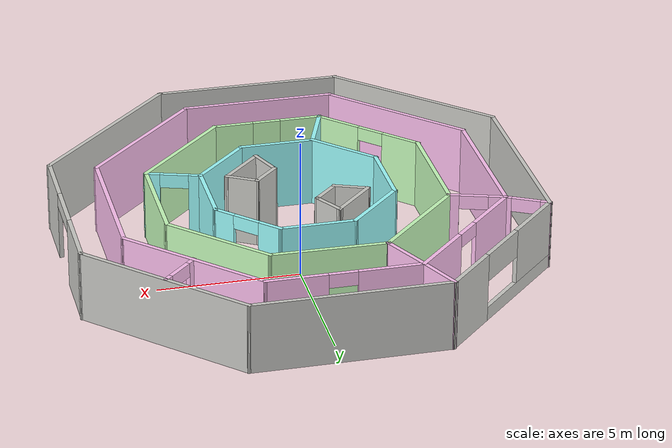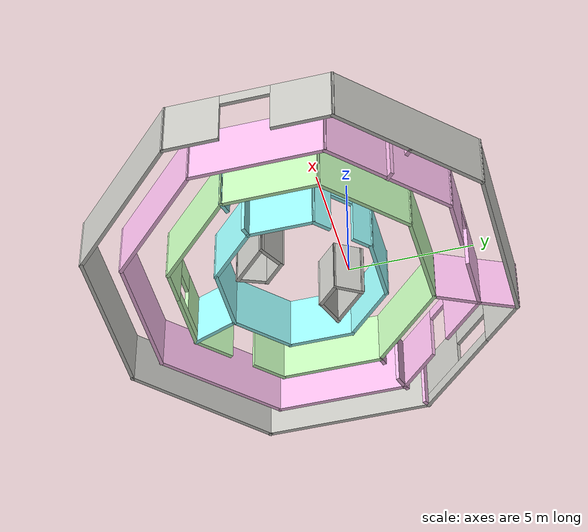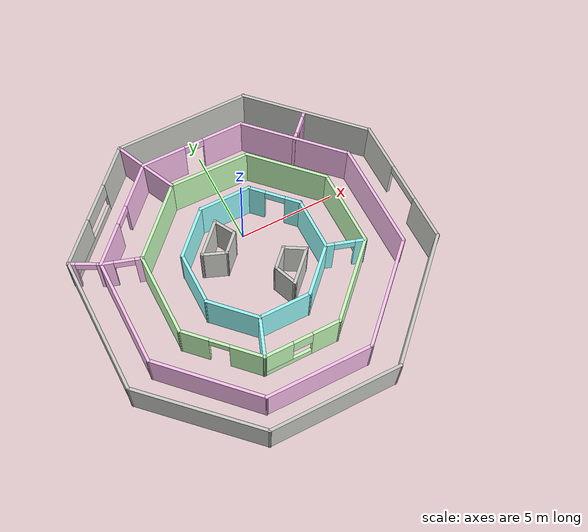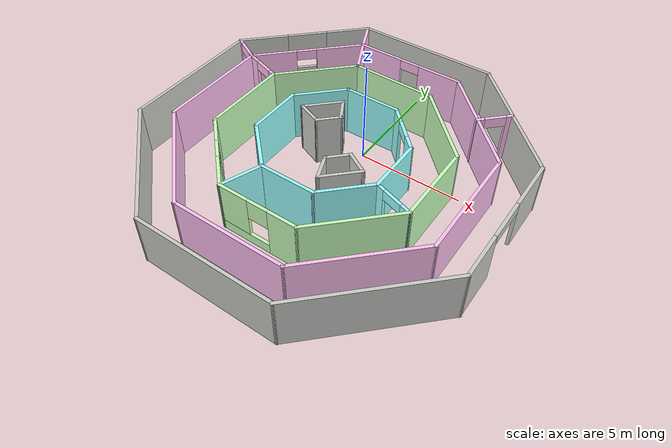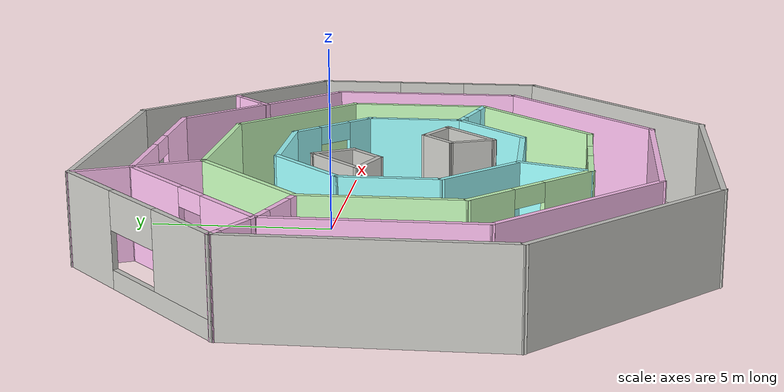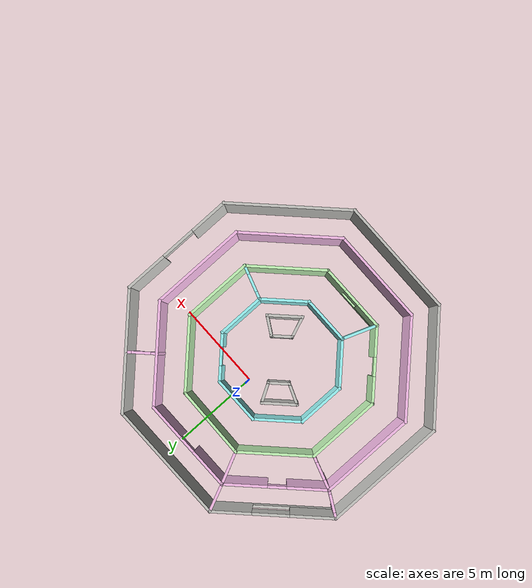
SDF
<?xml version='1.0'?>
<sdf version='1.6'>
  <model name='floor_maze'>
    <pose frame=''>-0.328206 -2.04876 0 0 -0 0</pose>
    <link name='Wall_0'>
      <collision name='Wall_0_Collision'>
        <geometry>
          <box>
            <size>2 0.15 2.5</size>
          </box>
        </geometry>
        <pose frame=''>0 0 1.25 0 -0 0</pose>
      </collision>
      <visual name='Wall_0_Visual'>
        <pose frame=''>0 0 1.25 0 -0 0</pose>
        <geometry>
          <box>
            <size>2 0.15 2.5</size>
          </box>
        </geometry>
        <material>
          <script>
            <uri>file://media/materials/scripts/gazebo.material</uri>
            <name>Gazebo/CeilingTiled</name>
          </script>
          <ambient>1 1 1 1</ambient>
        </material>
        <meta>
          <layer>0</layer>
        </meta>
      </visual>
      <pose frame=''>-1.65674 1.60413 0 0 -0 0.785398</pose>
    </link>
    <link name='Wall_1'>
      <collision name='Wall_1_Collision'>
        <geometry>
          <box>
            <size>1.25 0.15 2.5</size>
          </box>
        </geometry>
        <pose frame=''>0 0 1.25 0 -0 0</pose>
      </collision>
      <visual name='Wall_1_Visual'>
        <pose frame=''>0 0 1.25 0 -0 0</pose>
        <geometry>
          <box>
            <size>1.25 0.15 2.5</size>
          </box>
        </geometry>
        <material>
          <script>
            <uri>file://media/materials/scripts/gazebo.material</uri>
            <name>Gazebo/CeilingTiled</name>
          </script>
          <ambient>1 1 1 1</ambient>
        </material>
        <meta>
          <layer>0</layer>
        </meta>
      </visual>
      <pose frame=''>-0.727669 1.78189 0 0 0 -1.0472</pose>
    </link>
    <link name='Wall_10'>
      <collision name='Wall_10_Collision'>
        <geometry>
          <box>
            <size>2.75 0.15 2.5</size>
          </box>
        </geometry>
        <pose frame=''>0 0 1.25 0 -0 0</pose>
      </collision>
      <visual name='Wall_10_Visual'>
        <pose frame=''>0 0 1.25 0 -0 0</pose>
        <geometry>
          <box>
            <size>2.75 0.15 2.5</size>
          </box>
        </geometry>
        <material>
          <script>
            <uri>file://media/materials/scripts/gazebo.material</uri>
            <name>Gazebo/Grey</name>
          </script>
          <ambient>0.619608 1 1 1</ambient>
        </material>
        <meta>
          <layer>0</layer>
        </meta>
      </visual>
      <pose frame=''>-0.02661 3.17225 0 0 -0 0</pose>
    </link>
    <link name='Wall_11'>
      <pose frame=''>2.19263 2.25301 0 0 0 -0.785398</pose>
      <visual name='Wall_11_Visual_0'>
        <pose frame=''>-0.91859 0 1.25 0 -0 0</pose>
        <geometry>
          <box>
            <size>0.912819 0.15 2.5</size>
          </box>
        </geometry>
        <material>
          <script>
            <uri>file://media/materials/scripts/gazebo.material</uri>
            <name>Gazebo/Grey</name>
          </script>
          <ambient>0.619608 1 1 1</ambient>
        </material>
        <meta>
          <layer>0</layer>
        </meta>
      </visual>
      <collision name='Wall_11_Collision_0'>
        <geometry>
          <box>
            <size>0.912819 0.15 2.5</size>
          </box>
        </geometry>
        <pose frame=''>-0.91859 0 1.25 0 -0 0</pose>
      </collision>
      <visual name='Wall_11_Visual_1'>
        <pose frame=''>0.95641 0 1.25 0 -0 0</pose>
        <geometry>
          <box>
            <size>0.837181 0.15 2.5</size>
          </box>
        </geometry>
        <material>
          <script>
            <uri>file://media/materials/scripts/gazebo.material</uri>
            <name>Gazebo/Grey</name>
          </script>
          <ambient>0.619608 1 1 1</ambient>
        </material>
        <meta>
          <layer>0</layer>
        </meta>
      </visual>
      <collision name='Wall_11_Collision_1'>
        <geometry>
          <box>
            <size>0.837181 0.15 2.5</size>
          </box>
        </geometry>
        <pose frame=''>0.95641 0 1.25 0 -0 0</pose>
      </collision>
      <visual name='Wall_11_Visual_2'>
        <pose frame=''>0.037819 0 2.25 0 -0 0</pose>
        <geometry>
          <box>
            <size>1 0.15 0.5</size>
          </box>
        </geometry>
        <material>
          <script>
            <uri>file://media/materials/scripts/gazebo.material</uri>
            <name>Gazebo/Grey</name>
          </script>
          <ambient>0.619608 1 1 1</ambient>
        </material>
        <meta>
          <layer>0</layer>
        </meta>
      </visual>
      <collision name='Wall_11_Collision_2'>
        <geometry>
          <box>
            <size>1 0.15 0.5</size>
          </box>
        </geometry>
        <pose frame=''>0.037819 0 2.25 0 -0 0</pose>
      </collision>
    </link>
    <link name='Wall_12'>
      <collision name='Wall_12_Collision'>
        <geometry>
          <box>
            <size>2.75 0.15 2.5</size>
          </box>
        </geometry>
        <pose frame=''>0 0 1.25 0 -0 0</pose>
      </collision>
      <visual name='Wall_12_Visual'>
        <pose frame=''>0 0 1.25 0 -0 0</pose>
        <geometry>
          <box>
            <size>2.75 0.15 2.5</size>
          </box>
        </geometry>
        <material>
          <script>
            <uri>file://media/materials/scripts/gazebo.material</uri>
            <name>Gazebo/Grey</name>
          </script>
          <ambient>0.619608 1 1 1</ambient>
        </material>
        <meta>
          <layer>0</layer>
        </meta>
      </visual>
      <pose frame=''>3.11187 0.033771 0 0 0 -1.5708</pose>
    </link>
    <link name='Wall_13'>
      <collision name='Wall_13_Collision'>
        <geometry>
          <box>
            <size>2.75 0.15 2.5</size>
          </box>
        </geometry>
        <pose frame=''>0 0 1.25 0 -0 0</pose>
      </collision>
      <visual name='Wall_13_Visual'>
        <pose frame=''>0 0 1.25 0 -0 0</pose>
        <geometry>
          <box>
            <size>2.75 0.15 2.5</size>
          </box>
        </geometry>
        <material>
          <script>
            <uri>file://media/materials/scripts/gazebo.material</uri>
            <name>Gazebo/Grey</name>
          </script>
          <ambient>0.619608 1 1 1</ambient>
        </material>
        <meta>
          <layer>0</layer>
        </meta>
      </visual>
      <pose frame=''>2.19263 -2.18547 0 0 0 -2.35619</pose>
    </link>
    <link name='Wall_14'>
      <collision name='Wall_14_Collision'>
        <geometry>
          <box>
            <size>2.75 0.15 2.5</size>
          </box>
        </geometry>
        <pose frame=''>0 0 1.25 0 -0 0</pose>
      </collision>
      <visual name='Wall_14_Visual'>
        <pose frame=''>0 0 1.25 0 -0 0</pose>
        <geometry>
          <box>
            <size>2.75 0.15 2.5</size>
          </box>
        </geometry>
        <material>
          <script>
            <uri>file://media/materials/scripts/gazebo.material</uri>
            <name>Gazebo/Grey</name>
          </script>
          <ambient>0.619608 1 1 1</ambient>
        </material>
        <meta>
          <layer>0</layer>
        </meta>
      </visual>
      <pose frame=''>-0.02661 -3.10471 0 0 -0 3.14159</pose>
    </link>
    <link name='Wall_15'>
      <collision name='Wall_15_Collision'>
        <geometry>
          <box>
            <size>2.75 0.15 2.5</size>
          </box>
        </geometry>
        <pose frame=''>0 0 1.25 0 -0 0</pose>
      </collision>
      <visual name='Wall_15_Visual'>
        <pose frame=''>0 0 1.25 0 -0 0</pose>
        <geometry>
          <box>
            <size>2.75 0.15 2.5</size>
          </box>
        </geometry>
        <material>
          <script>
            <uri>file://media/materials/scripts/gazebo.material</uri>
            <name>Gazebo/Grey</name>
          </script>
          <ambient>0.619608 1 1 1</ambient>
        </material>
        <meta>
          <layer>0</layer>
        </meta>
      </visual>
      <pose frame=''>-2.24585 -2.18547 0 0 -0 2.35619</pose>
    </link>
    <link name='Wall_16'>
      <collision name='Wall_16_Collision'>
        <geometry>
          <box>
            <size>2.75 0.15 2.5</size>
          </box>
        </geometry>
        <pose frame=''>0 0 1.25 0 -0 0</pose>
      </collision>
      <visual name='Wall_16_Visual'>
        <pose frame=''>0 0 1.25 0 -0 0</pose>
        <geometry>
          <box>
            <size>2.75 0.15 2.5</size>
          </box>
        </geometry>
        <material>
          <script>
            <uri>file://media/materials/scripts/gazebo.material</uri>
            <name>Gazebo/Grey</name>
          </script>
          <ambient>0.619608 1 1 1</ambient>
        </material>
        <meta>
          <layer>0</layer>
        </meta>
      </visual>
      <pose frame=''>-3.16509 0.033771 0 0 -0 1.5708</pose>
    </link>
    <link name='Wall_17'>
      <collision name='Wall_17_Collision'>
        <geometry>
          <box>
            <size>2.75 0.15 2.5</size>
          </box>
        </geometry>
        <pose frame=''>0 0 1.25 0 -0 0</pose>
      </collision>
      <visual name='Wall_17_Visual'>
        <pose frame=''>0 0 1.25 0 -0 0</pose>
        <geometry>
          <box>
            <size>2.75 0.15 2.5</size>
          </box>
        </geometry>
        <material>
          <script>
            <uri>file://media/materials/scripts/gazebo.material</uri>
            <name>Gazebo/Grey</name>
          </script>
          <ambient>0.619608 1 1 1</ambient>
        </material>
        <meta>
          <layer>0</layer>
        </meta>
      </visual>
      <pose frame=''>-2.24585 2.25301 0 0 -0 0.785398</pose>
    </link>
    <link name='Wall_19'>
      <collision name='Wall_19_Collision'>
        <geometry>
          <box>
            <size>4.25 0.15 2.5</size>
          </box>
        </geometry>
        <pose frame=''>0 0 1.25 0 -0 0</pose>
      </collision>
      <visual name='Wall_19_Visual'>
        <pose frame=''>0 0 1.25 0 -0 0</pose>
        <geometry>
          <box>
            <size>4.25 0.15 2.5</size>
          </box>
        </geometry>
        <material>
          <script>
            <uri>file://media/materials/scripts/gazebo.material</uri>
            <name>Gazebo/Grey</name>
          </script>
          <ambient>0.788235 1 0.741176 1</ambient>
        </material>
        <meta>
          <layer>0</layer>
        </meta>
      </visual>
      <pose frame=''>3.47359 3.45643 0 0 0 -0.785398</pose>
    </link>
    <link name='Wall_2'>
      <collision name='Wall_2_Collision'>
        <geometry>
          <box>
            <size>1.25 0.15 2.5</size>
          </box>
        </geometry>
        <pose frame=''>0 0 1.25 0 -0 0</pose>
      </collision>
      <visual name='Wall_2_Visual'>
        <pose frame=''>0 0 1.25 0 -0 0</pose>
        <geometry>
          <box>
            <size>1.25 0.15 2.5</size>
          </box>
        </geometry>
        <material>
          <script>
            <uri>file://media/materials/scripts/gazebo.material</uri>
            <name>Gazebo/CeilingTiled</name>
          </script>
          <ambient>1 1 1 1</ambient>
        </material>
        <meta>
          <layer>0</layer>
        </meta>
      </visual>
      <pose frame=''>-0.841577 0.916669 0 0 0 -2.35619</pose>
    </link>
    <link name='Wall_20'>
      <collision name='Wall_20_Collision'>
        <geometry>
          <box>
            <size>4 0.15 2.5</size>
          </box>
        </geometry>
        <pose frame=''>0 0 1.25 0 -0 0</pose>
      </collision>
      <visual name='Wall_20_Visual'>
        <pose frame=''>0 0 1.25 0 -0 0</pose>
        <geometry>
          <box>
            <size>4 0.15 2.5</size>
          </box>
        </geometry>
        <material>
          <script>
            <uri>file://media/materials/scripts/gazebo.material</uri>
            <name>Gazebo/Grey</name>
          </script>
          <ambient>0.788235 1 0.741176 1</ambient>
        </material>
        <meta>
          <layer>0</layer>
        </meta>
      </visual>
      <pose frame=''>4.92316 0.081867 0 0 0 -1.5708</pose>
    </link>
    <link name='Wall_21'>
      <collision name='Wall_21_Collision'>
        <geometry>
          <box>
            <size>4.5 0.15 2.5</size>
          </box>
        </geometry>
        <pose frame=''>0 0 1.25 0 -0 0</pose>
      </collision>
      <visual name='Wall_21_Visual'>
        <pose frame=''>0 0 1.25 0 -0 0</pose>
        <geometry>
          <box>
            <size>4.5 0.15 2.5</size>
          </box>
        </geometry>
        <material>
          <script>
            <uri>file://media/materials/scripts/gazebo.material</uri>
            <name>Gazebo/Grey</name>
          </script>
          <ambient>0.788235 1 0.741176 1</ambient>
        </material>
        <meta>
          <layer>0</layer>
        </meta>
      </visual>
      <pose frame=''>3.3852 -3.38109 0 0 0 -2.35619</pose>
    </link>
    <link name='Wall_22'>
      <pose frame=''>-0.077758 -4.91905 0 0 -0 3.14159</pose>
      <visual name='Wall_22_Visual_0'>
        <pose frame=''>-1.26518 0 1.25 0 -0 0</pose>
        <geometry>
          <box>
            <size>1.46964 0.15 2.5</size>
          </box>
        </geometry>
        <material>
          <script>
            <uri>file://media/materials/scripts/gazebo.material</uri>
            <name>Gazebo/Grey</name>
          </script>
          <ambient>0.788235 1 0.741176 1</ambient>
        </material>
        <meta>
          <layer>0</layer>
        </meta>
      </visual>
      <collision name='Wall_22_Collision_0'>
        <geometry>
          <box>
            <size>1.46964 0.15 2.5</size>
          </box>
        </geometry>
        <pose frame=''>-1.26518 0 1.25 0 -0 0</pose>
      </collision>
      <visual name='Wall_22_Visual_1'>
        <pose frame=''>0.734819 0 0.25 0 -0 0</pose>
        <geometry>
          <box>
            <size>2.53036 0.15 0.5</size>
          </box>
        </geometry>
        <material>
          <script>
            <uri>file://media/materials/scripts/gazebo.material</uri>
            <name>Gazebo/Grey</name>
          </script>
          <ambient>0.788235 1 0.741176 1</ambient>
        </material>
        <meta>
          <layer>0</layer>
        </meta>
      </visual>
      <collision name='Wall_22_Collision_1'>
        <geometry>
          <box>
            <size>2.53036 0.15 0.5</size>
          </box>
        </geometry>
        <pose frame=''>0.734819 0 0.25 0 -0 0</pose>
      </collision>
      <visual name='Wall_22_Visual_2'>
        <pose frame=''>1.23482 0 1.5 0 -0 0</pose>
        <geometry>
          <box>
            <size>1.53036 0.15 2</size>
          </box>
        </geometry>
        <material>
          <script>
            <uri>file://media/materials/scripts/gazebo.material</uri>
            <name>Gazebo/Grey</name>
          </script>
          <ambient>0.788235 1 0.741176 1</ambient>
        </material>
        <meta>
          <layer>0</layer>
        </meta>
      </visual>
      <collision name='Wall_22_Collision_2'>
        <geometry>
          <box>
            <size>1.53036 0.15 2</size>
          </box>
        </geometry>
        <pose frame=''>1.23482 0 1.5 0 -0 0</pose>
      </collision>
      <visual name='Wall_22_Visual_3'>
        <pose frame=''>-0.030362 0 2 0 -0 0</pose>
        <geometry>
          <box>
            <size>1 0.15 1</size>
          </box>
        </geometry>
        <material>
          <script>
            <uri>file://media/materials/scripts/gazebo.material</uri>
            <name>Gazebo/Grey</name>
          </script>
          <ambient>0.788235 1 0.741176 1</ambient>
        </material>
        <meta>
          <layer>0</layer>
        </meta>
      </visual>
      <collision name='Wall_22_Collision_3'>
        <geometry>
          <box>
            <size>1 0.15 1</size>
          </box>
        </geometry>
        <pose frame=''>-0.030362 0 2 0 -0 0</pose>
      </collision>
    </link>
    <link name='Wall_23'>
      <pose frame=''>-3.45233 -3.46948 0 0 -0 2.35619</pose>
      <visual name='Wall_23_Visual_0'>
        <pose frame=''>-1.25548 0 1.25 0 -0 0</pose>
        <geometry>
          <box>
            <size>1.73903 0.15 2.5</size>
          </box>
        </geometry>
        <material>
          <script>
            <uri>file://media/materials/scripts/gazebo.material</uri>
            <name>Gazebo/Grey</name>
          </script>
          <ambient>0.788235 1 0.741176 1</ambient>
        </material>
        <meta>
          <layer>0</layer>
        </meta>
      </visual>
      <collision name='Wall_23_Collision_0'>
        <geometry>
          <box>
            <size>1.73903 0.15 2.5</size>
          </box>
        </geometry>
        <pose frame=''>-1.25548 0 1.25 0 -0 0</pose>
      </collision>
      <visual name='Wall_23_Visual_1'>
        <pose frame=''>1.36952 0 1.25 0 -0 0</pose>
        <geometry>
          <box>
            <size>1.51097 0.15 2.5</size>
          </box>
        </geometry>
        <material>
          <script>
            <uri>file://media/materials/scripts/gazebo.material</uri>
            <name>Gazebo/Grey</name>
          </script>
          <ambient>0.788235 1 0.741176 1</ambient>
        </material>
        <meta>
          <layer>0</layer>
        </meta>
      </visual>
      <collision name='Wall_23_Collision_1'>
        <geometry>
          <box>
            <size>1.51097 0.15 2.5</size>
          </box>
        </geometry>
        <pose frame=''>1.36952 0 1.25 0 -0 0</pose>
      </collision>
      <visual name='Wall_23_Visual_2'>
        <pose frame=''>0.114034 0 2.25 0 -0 0</pose>
        <geometry>
          <box>
            <size>1 0.15 0.5</size>
          </box>
        </geometry>
        <material>
          <script>
            <uri>file://media/materials/scripts/gazebo.material</uri>
            <name>Gazebo/Grey</name>
          </script>
          <ambient>0.788235 1 0.741176 1</ambient>
        </material>
        <meta>
          <layer>0</layer>
        </meta>
      </visual>
      <collision name='Wall_23_Collision_2'>
        <geometry>
          <box>
            <size>1 0.15 0.5</size>
          </box>
        </geometry>
        <pose frame=''>0.114034 0 2.25 0 -0 0</pose>
      </collision>
    </link>
    <link name='Wall_24'>
      <collision name='Wall_24_Collision'>
        <geometry>
          <box>
            <size>4.25 0.15 2.5</size>
          </box>
        </geometry>
        <pose frame=''>0 0 1.25 0 -0 0</pose>
      </collision>
      <visual name='Wall_24_Visual'>
        <pose frame=''>0 0 1.25 0 -0 0</pose>
        <geometry>
          <box>
            <size>4.25 0.15 2.5</size>
          </box>
        </geometry>
        <material>
          <script>
            <uri>file://media/materials/scripts/gazebo.material</uri>
            <name>Gazebo/Grey</name>
          </script>
          <ambient>0.788235 1 0.741176 1</ambient>
        </material>
        <meta>
          <layer>0</layer>
        </meta>
      </visual>
      <pose frame=''>-4.9019 0.03009 0 0 -0 1.5708</pose>
    </link>
    <link name='Wall_25'>
      <collision name='Wall_25_Collision'>
        <geometry>
          <box>
            <size>4.25 0.15 2.5</size>
          </box>
        </geometry>
        <pose frame=''>0 0 1.25 0 -0 0</pose>
      </collision>
      <visual name='Wall_25_Visual'>
        <pose frame=''>0 0 1.25 0 -0 0</pose>
        <geometry>
          <box>
            <size>4.25 0.15 2.5</size>
          </box>
        </geometry>
        <material>
          <script>
            <uri>file://media/materials/scripts/gazebo.material</uri>
            <name>Gazebo/Grey</name>
          </script>
          <ambient>0.788235 1 0.741176 1</ambient>
        </material>
        <meta>
          <layer>0</layer>
        </meta>
      </visual>
      <pose frame=''>-3.45233 3.52966 0 0 -0 0.785398</pose>
    </link>
    <link name='Wall_26'>
      <collision name='Wall_26_Collision'>
        <geometry>
          <box>
            <size>4.17744 0.15 2.5</size>
          </box>
        </geometry>
        <pose frame=''>0 0 1.25 0 -0 0</pose>
      </collision>
      <visual name='Wall_26_Visual'>
        <pose frame=''>0 0 1.25 0 -0 0</pose>
        <geometry>
          <box>
            <size>4.17744 0.15 2.5</size>
          </box>
        </geometry>
        <material>
          <script>
            <uri>file://media/materials/scripts/gazebo.material</uri>
            <name>Gazebo/Grey</name>
          </script>
          <ambient>0.788235 1 0.741176 1</ambient>
        </material>
        <meta>
          <layer>0</layer>
        </meta>
      </visual>
      <pose frame=''>0.01063 4.94262 0 0 0 -0.018182</pose>
    </link>
    <link name='Wall_28'>
      <collision name='Wall_28_Collision'>
        <geometry>
          <box>
            <size>2.08624 0.15 2.5</size>
          </box>
        </geometry>
        <pose frame=''>0 0 1.25 0 -0 0</pose>
      </collision>
      <visual name='Wall_28_Visual'>
        <pose frame=''>0 0 1.25 0 -0 0</pose>
        <geometry>
          <box>
            <size>2.08624 0.15 2.5</size>
          </box>
        </geometry>
        <material>
          <script>
            <uri>file://media/materials/scripts/gazebo.material</uri>
            <name>Gazebo/Grey</name>
          </script>
          <ambient>0.619608 1 1 1</ambient>
        </material>
        <meta>
          <layer>0</layer>
        </meta>
      </visual>
      <pose frame=''>-1.66468 -4.01188 0 0 0 -1.92752</pose>
    </link>
    <link name='Wall_3'>
      <collision name='Wall_3_Collision'>
        <geometry>
          <box>
            <size>1.30994 0.15 2.5</size>
          </box>
        </geometry>
        <pose frame=''>0 0 1.25 0 -0 0</pose>
      </collision>
      <visual name='Wall_3_Visual'>
        <pose frame=''>0 0 1.25 0 -0 0</pose>
        <geometry>
          <box>
            <size>1.30994 0.15 2.5</size>
          </box>
        </geometry>
        <material>
          <script>
            <uri>file://media/materials/scripts/gazebo.material</uri>
            <name>Gazebo/CeilingTiled</name>
          </script>
          <ambient>1 1 1 1</ambient>
        </material>
        <meta>
          <layer>0</layer>
        </meta>
      </visual>
      <pose frame=''>-1.77065 0.73891 0 0 -0 2.76896</pose>
    </link>
    <link name='Wall_30'>
      <pose frame=''>4.01751 -1.55468 0 0 0 -0.308346</pose>
      <visual name='Wall_30_Visual_0'>
        <pose frame=''>-0.781686 0 1.25 0 -0 0</pose>
        <geometry>
          <box>
            <size>0.48757 0.15 2.5</size>
          </box>
        </geometry>
        <material>
          <script>
            <uri>file://media/materials/scripts/gazebo.material</uri>
            <name>Gazebo/Grey</name>
          </script>
          <ambient>0.619608 1 1 1</ambient>
        </material>
        <meta>
          <layer>0</layer>
        </meta>
      </visual>
      <collision name='Wall_30_Collision_0'>
        <geometry>
          <box>
            <size>0.48757 0.15 2.5</size>
          </box>
        </geometry>
        <pose frame=''>-0.781686 0 1.25 0 -0 0</pose>
      </collision>
      <visual name='Wall_30_Visual_1'>
        <pose frame=''>0.743785 0 1.25 0 -0 0</pose>
        <geometry>
          <box>
            <size>0.563373 0.15 2.5</size>
          </box>
        </geometry>
        <material>
          <script>
            <uri>file://media/materials/scripts/gazebo.material</uri>
            <name>Gazebo/Grey</name>
          </script>
          <ambient>0.619608 1 1 1</ambient>
        </material>
        <meta>
          <layer>0</layer>
        </meta>
      </visual>
      <collision name='Wall_30_Collision_1'>
        <geometry>
          <box>
            <size>0.563373 0.15 2.5</size>
          </box>
        </geometry>
        <pose frame=''>0.743785 0 1.25 0 -0 0</pose>
      </collision>
      <visual name='Wall_30_Visual_2'>
        <pose frame=''>-0.037901 0 2.25 0 -0 0</pose>
        <geometry>
          <box>
            <size>1 0.15 0.5</size>
          </box>
        </geometry>
        <material>
          <script>
            <uri>file://media/materials/scripts/gazebo.material</uri>
            <name>Gazebo/Grey</name>
          </script>
          <ambient>0.619608 1 1 1</ambient>
        </material>
        <meta>
          <layer>0</layer>
        </meta>
      </visual>
      <collision name='Wall_30_Collision_2'>
        <geometry>
          <box>
            <size>1 0.15 0.5</size>
          </box>
        </geometry>
        <pose frame=''>-0.037901 0 2.25 0 -0 0</pose>
      </collision>
    </link>
    <link name='Wall_32'>
      <pose frame=''>-0.113177 6.63283 0 0 -0 0</pose>
      <visual name='Wall_32_Visual_0'>
        <pose frame=''>-1.58989 0 1.25 0 -0 0</pose>
        <geometry>
          <box>
            <size>2.32022 0.15 2.5</size>
          </box>
        </geometry>
        <material>
          <script>
            <uri>file://media/materials/scripts/gazebo.material</uri>
            <name>Gazebo/Grey</name>
          </script>
          <ambient>1 0.760784 0.945098 1</ambient>
        </material>
        <meta>
          <layer>0</layer>
        </meta>
      </visual>
      <collision name='Wall_32_Collision_0'>
        <geometry>
          <box>
            <size>2.32022 0.15 2.5</size>
          </box>
        </geometry>
        <pose frame=''>-1.58989 0 1.25 0 -0 0</pose>
      </collision>
      <visual name='Wall_32_Visual_1'>
        <pose frame=''>1.66011 0 1.25 0 -0 0</pose>
        <geometry>
          <box>
            <size>2.17978 0.15 2.5</size>
          </box>
        </geometry>
        <material>
          <script>
            <uri>file://media/materials/scripts/gazebo.material</uri>
            <name>Gazebo/Grey</name>
          </script>
          <ambient>1 0.760784 0.945098 1</ambient>
        </material>
        <meta>
          <layer>0</layer>
        </meta>
      </visual>
      <collision name='Wall_32_Collision_1'>
        <geometry>
          <box>
            <size>2.17978 0.15 2.5</size>
          </box>
        </geometry>
        <pose frame=''>1.66011 0 1.25 0 -0 0</pose>
      </collision>
      <visual name='Wall_32_Visual_2'>
        <pose frame=''>0.070223 0 2.25 0 -0 0</pose>
        <geometry>
          <box>
            <size>1 0.15 0.5</size>
          </box>
        </geometry>
        <material>
          <script>
            <uri>file://media/materials/scripts/gazebo.material</uri>
            <name>Gazebo/Grey</name>
          </script>
          <ambient>1 0.760784 0.945098 1</ambient>
        </material>
        <meta>
          <layer>0</layer>
        </meta>
      </visual>
      <collision name='Wall_32_Collision_2'>
        <geometry>
          <box>
            <size>1 0.15 0.5</size>
          </box>
        </geometry>
        <pose frame=''>0.070223 0 2.25 0 -0 0</pose>
      </collision>
    </link>
    <link name='Wall_33'>
      <collision name='Wall_33_Collision'>
        <geometry>
          <box>
            <size>5.75 0.15 2.5</size>
          </box>
        </geometry>
        <pose frame=''>0 0 1.25 0 -0 0</pose>
      </collision>
      <visual name='Wall_33_Visual'>
        <pose frame=''>0 0 1.25 0 -0 0</pose>
        <geometry>
          <box>
            <size>5.75 0.15 2.5</size>
          </box>
        </geometry>
        <material>
          <script>
            <uri>file://media/materials/scripts/gazebo.material</uri>
            <name>Gazebo/Grey</name>
          </script>
          <ambient>1 0.760784 0.945098 1</ambient>
        </material>
        <meta>
          <layer>0</layer>
        </meta>
      </visual>
      <pose frame=''>4.54172 4.65294 0 0 0 -0.785398</pose>
    </link>
    <link name='Wall_34'>
      <collision name='Wall_34_Collision'>
        <geometry>
          <box>
            <size>5.5 0.15 2.5</size>
          </box>
        </geometry>
        <pose frame=''>0 0 1.25 0 -0 0</pose>
      </collision>
      <visual name='Wall_34_Visual'>
        <pose frame=''>0 0 1.25 0 -0 0</pose>
        <geometry>
          <box>
            <size>5.5 0.15 2.5</size>
          </box>
        </geometry>
        <material>
          <script>
            <uri>file://media/materials/scripts/gazebo.material</uri>
            <name>Gazebo/Grey</name>
          </script>
          <ambient>1 0.760784 0.945098 1</ambient>
        </material>
        <meta>
          <layer>0</layer>
        </meta>
      </visual>
      <pose frame=''>6.52162 -0.001964 0 0 0 -1.5708</pose>
    </link>
    <link name='Wall_35'>
      <collision name='Wall_35_Collision'>
        <geometry>
          <box>
            <size>5.75 0.15 2.5</size>
          </box>
        </geometry>
        <pose frame=''>0 0 1.25 0 -0 0</pose>
      </collision>
      <visual name='Wall_35_Visual'>
        <pose frame=''>0 0 1.25 0 -0 0</pose>
        <geometry>
          <box>
            <size>5.75 0.15 2.5</size>
          </box>
        </geometry>
        <material>
          <script>
            <uri>file://media/materials/scripts/gazebo.material</uri>
            <name>Gazebo/Grey</name>
          </script>
          <ambient>1 0.760784 0.945098 1</ambient>
        </material>
        <meta>
          <layer>0</layer>
        </meta>
      </visual>
      <pose frame=''>4.54172 -4.65686 0 0 0 -2.35619</pose>
    </link>
    <link name='Wall_36'>
      <collision name='Wall_36_Collision'>
        <geometry>
          <box>
            <size>5.5 0.15 2.5</size>
          </box>
        </geometry>
        <pose frame=''>0 0 1.25 0 -0 0</pose>
      </collision>
      <visual name='Wall_36_Visual'>
        <pose frame=''>0 0 1.25 0 -0 0</pose>
        <geometry>
          <box>
            <size>5.5 0.15 2.5</size>
          </box>
        </geometry>
        <material>
          <script>
            <uri>file://media/materials/scripts/gazebo.material</uri>
            <name>Gazebo/Grey</name>
          </script>
          <ambient>1 0.760784 0.945098 1</ambient>
        </material>
        <meta>
          <layer>0</layer>
        </meta>
      </visual>
      <pose frame=''>-0.113177 -6.63676 0 0 -0 3.14159</pose>
    </link>
    <link name='Wall_37'>
      <collision name='Wall_37_Collision'>
        <geometry>
          <box>
            <size>5.75 0.15 2.5</size>
          </box>
        </geometry>
        <pose frame=''>0 0 1.25 0 -0 0</pose>
      </collision>
      <visual name='Wall_37_Visual'>
        <pose frame=''>0 0 1.25 0 -0 0</pose>
        <geometry>
          <box>
            <size>5.75 0.15 2.5</size>
          </box>
        </geometry>
        <material>
          <script>
            <uri>file://media/materials/scripts/gazebo.material</uri>
            <name>Gazebo/Grey</name>
          </script>
          <ambient>1 0.760784 0.945098 1</ambient>
        </material>
        <meta>
          <layer>0</layer>
        </meta>
      </visual>
      <pose frame=''>-4.76808 -4.65686 0 0 -0 2.35619</pose>
    </link>
    <link name='Wall_38'>
      <collision name='Wall_38_Collision'>
        <geometry>
          <box>
            <size>5.5 0.15 2.5</size>
          </box>
        </geometry>
        <pose frame=''>0 0 1.25 0 -0 0</pose>
      </collision>
      <visual name='Wall_38_Visual'>
        <pose frame=''>0 0 1.25 0 -0 0</pose>
        <geometry>
          <box>
            <size>5.5 0.15 2.5</size>
          </box>
        </geometry>
        <material>
          <script>
            <uri>file://media/materials/scripts/gazebo.material</uri>
            <name>Gazebo/Grey</name>
          </script>
          <ambient>1 0.760784 0.945098 1</ambient>
        </material>
        <meta>
          <layer>0</layer>
        </meta>
      </visual>
      <pose frame=''>-6.74798 -0.001964 0 0 -0 1.5708</pose>
    </link>
    <link name='Wall_39'>
      <pose frame=''>-4.76808 4.65294 0 0 -0 0.785398</pose>
      <visual name='Wall_39_Visual_0'>
        <pose frame=''>-1.72655 0 1.25 0 -0 0</pose>
        <geometry>
          <box>
            <size>2.29689 0.15 2.5</size>
          </box>
        </geometry>
        <material>
          <script>
            <uri>file://media/materials/scripts/gazebo.material</uri>
            <name>Gazebo/Grey</name>
          </script>
          <ambient>1 0.760784 0.945098 1</ambient>
        </material>
        <meta>
          <layer>0</layer>
        </meta>
      </visual>
      <collision name='Wall_39_Collision_0'>
        <geometry>
          <box>
            <size>2.29689 0.15 2.5</size>
          </box>
        </geometry>
        <pose frame=''>-1.72655 0 1.25 0 -0 0</pose>
      </collision>
      <visual name='Wall_39_Visual_1'>
        <pose frame=''>1.64845 0 1.25 0 -0 0</pose>
        <geometry>
          <box>
            <size>2.45311 0.15 2.5</size>
          </box>
        </geometry>
        <material>
          <script>
            <uri>file://media/materials/scripts/gazebo.material</uri>
            <name>Gazebo/Grey</name>
          </script>
          <ambient>1 0.760784 0.945098 1</ambient>
        </material>
        <meta>
          <layer>0</layer>
        </meta>
      </visual>
      <collision name='Wall_39_Collision_1'>
        <geometry>
          <box>
            <size>2.45311 0.15 2.5</size>
          </box>
        </geometry>
        <pose frame=''>1.64845 0 1.25 0 -0 0</pose>
      </collision>
      <visual name='Wall_39_Visual_2'>
        <pose frame=''>-0.078108 0 2.25 0 -0 0</pose>
        <geometry>
          <box>
            <size>1 0.15 0.5</size>
          </box>
        </geometry>
        <material>
          <script>
            <uri>file://media/materials/scripts/gazebo.material</uri>
            <name>Gazebo/Grey</name>
          </script>
          <ambient>1 0.760784 0.945098 1</ambient>
        </material>
        <meta>
          <layer>0</layer>
        </meta>
      </visual>
      <collision name='Wall_39_Collision_2'>
        <geometry>
          <box>
            <size>1 0.15 0.5</size>
          </box>
        </geometry>
        <pose frame=''>-0.078108 0 2.25 0 -0 0</pose>
      </collision>
    </link>
    <link name='Wall_41'>
      <collision name='Wall_41_Collision'>
        <geometry>
          <box>
            <size>0.15 0.15 2.5</size>
          </box>
        </geometry>
        <pose frame=''>0 0 1.25 0 -0 0</pose>
      </collision>
      <visual name='Wall_41_Visual'>
        <pose frame=''>0 0 1.25 0 -0 0</pose>
        <geometry>
          <box>
            <size>0.15 0.15 2.5</size>
          </box>
        </geometry>
        <material>
          <script>
            <uri>file://media/materials/scripts/gazebo.material</uri>
            <name>Gazebo/Grey</name>
          </script>
          <ambient>1 1 1 1</ambient>
        </material>
        <meta>
          <layer>0</layer>
        </meta>
      </visual>
      <pose frame=''>-2.00276 4.97923 0 0 -0 0</pose>
    </link>
    <link name='Wall_42'>
      <collision name='Wall_42_Collision'>
        <geometry>
          <box>
            <size>1.98065 0.15 2.5</size>
          </box>
        </geometry>
        <pose frame=''>0 0 1.25 0 -0 0</pose>
      </collision>
      <visual name='Wall_42_Visual'>
        <pose frame=''>0 0 1.25 0 -0 0</pose>
        <geometry>
          <box>
            <size>1.98065 0.15 2.5</size>
          </box>
        </geometry>
        <material>
          <script>
            <uri>file://media/materials/scripts/gazebo.material</uri>
            <name>Gazebo/Grey</name>
          </script>
          <ambient>1 0.760784 0.945098 1</ambient>
        </material>
        <meta>
          <layer>0</layer>
        </meta>
      </visual>
      <pose frame=''>-2.39547 5.80603 0 0 -0 2.01422</pose>
    </link>
    <link name='Wall_44'>
      <pose frame=''>-5.82493 2.37656 0 0 0 -0.310784</pose>
      <visual name='Wall_44_Visual_0'>
        <pose frame=''>-0.712076 0 1.25 0 -0 0</pose>
        <geometry>
          <box>
            <size>0.664815 0.15 2.5</size>
          </box>
        </geometry>
        <material>
          <script>
            <uri>file://media/materials/scripts/gazebo.material</uri>
            <name>Gazebo/Grey</name>
          </script>
          <ambient>1 0.760784 0.945098 1</ambient>
        </material>
        <meta>
          <layer>0</layer>
        </meta>
      </visual>
      <collision name='Wall_44_Collision_0'>
        <geometry>
          <box>
            <size>0.664815 0.15 2.5</size>
          </box>
        </geometry>
        <pose frame=''>-0.712076 0 1.25 0 -0 0</pose>
      </collision>
      <visual name='Wall_44_Visual_1'>
        <pose frame=''>0.832407 0 1.25 0 -0 0</pose>
        <geometry>
          <box>
            <size>0.424152 0.15 2.5</size>
          </box>
        </geometry>
        <material>
          <script>
            <uri>file://media/materials/scripts/gazebo.material</uri>
            <name>Gazebo/Grey</name>
          </script>
          <ambient>1 0.760784 0.945098 1</ambient>
        </material>
        <meta>
          <layer>0</layer>
        </meta>
      </visual>
      <collision name='Wall_44_Collision_1'>
        <geometry>
          <box>
            <size>0.424152 0.15 2.5</size>
          </box>
        </geometry>
        <pose frame=''>0.832407 0 1.25 0 -0 0</pose>
      </collision>
      <visual name='Wall_44_Visual_2'>
        <pose frame=''>0.120331 0 2.25 0 -0 0</pose>
        <geometry>
          <box>
            <size>1 0.15 0.5</size>
          </box>
        </geometry>
        <material>
          <script>
            <uri>file://media/materials/scripts/gazebo.material</uri>
            <name>Gazebo/Grey</name>
          </script>
          <ambient>1 0.760784 0.945098 1</ambient>
        </material>
        <meta>
          <layer>0</layer>
        </meta>
      </visual>
      <collision name='Wall_44_Collision_2'>
        <geometry>
          <box>
            <size>1 0.15 0.5</size>
          </box>
        </geometry>
        <pose frame=''>0.120331 0 2.25 0 -0 0</pose>
      </collision>
    </link>
    <link name='Wall_46'>
      <collision name='Wall_46_Collision'>
        <geometry>
          <box>
            <size>6.75 0.15 2.5</size>
          </box>
        </geometry>
        <pose frame=''>0 0 1.25 0 -0 0</pose>
      </collision>
      <visual name='Wall_46_Visual'>
        <pose frame=''>0 0 1.25 0 -0 0</pose>
        <geometry>
          <box>
            <size>6.75 0.15 2.5</size>
          </box>
        </geometry>
        <material>
          <script>
            <uri>file://media/materials/scripts/gazebo.material</uri>
            <name>Gazebo/CeilingTiled</name>
          </script>
          <ambient>1 1 1 1</ambient>
        </material>
        <meta>
          <layer>0</layer>
        </meta>
      </visual>
      <pose frame=''>-0.051777 -8.05529 0 0 -0 0</pose>
    </link>
    <link name='Wall_47'>
      <collision name='Wall_47_Collision'>
        <geometry>
          <box>
            <size>7 0.15 2.5</size>
          </box>
        </geometry>
        <pose frame=''>0 0 1.25 0 -0 0</pose>
      </collision>
      <visual name='Wall_47_Visual'>
        <pose frame=''>0 0 1.25 0 -0 0</pose>
        <geometry>
          <box>
            <size>7 0.15 2.5</size>
          </box>
        </geometry>
        <material>
          <script>
            <uri>file://media/materials/scripts/gazebo.material</uri>
            <name>Gazebo/CeilingTiled</name>
          </script>
          <ambient>1 1 1 1</ambient>
        </material>
        <meta>
          <layer>0</layer>
        </meta>
      </visual>
      <pose frame=''>5.67006 -5.63345 0 0 -0 0.785398</pose>
    </link>
    <link name='Wall_48'>
      <pose frame=''>8.09191 0.088388 0 0 -0 1.5708</pose>
      <visual name='Wall_48_Visual_0'>
        <pose frame=''>-2.24025 0 1.25 0 -0 0</pose>
        <geometry>
          <box>
            <size>2.26949 0.15 2.5</size>
          </box>
        </geometry>
        <material>
          <script>
            <uri>file://media/materials/scripts/gazebo.material</uri>
            <name>Gazebo/CeilingTiled</name>
          </script>
          <ambient>1 1 1 1</ambient>
        </material>
        <meta>
          <layer>0</layer>
        </meta>
      </visual>
      <collision name='Wall_48_Collision_0'>
        <geometry>
          <box>
            <size>2.26949 0.15 2.5</size>
          </box>
        </geometry>
        <pose frame=''>-2.24025 0 1.25 0 -0 0</pose>
      </collision>
      <visual name='Wall_48_Visual_1'>
        <pose frame=''>2.13475 0 1.25 0 -0 0</pose>
        <geometry>
          <box>
            <size>2.48051 0.15 2.5</size>
          </box>
        </geometry>
        <material>
          <script>
            <uri>file://media/materials/scripts/gazebo.material</uri>
            <name>Gazebo/CeilingTiled</name>
          </script>
          <ambient>1 1 1 1</ambient>
        </material>
        <meta>
          <layer>0</layer>
        </meta>
      </visual>
      <collision name='Wall_48_Collision_1'>
        <geometry>
          <box>
            <size>2.48051 0.15 2.5</size>
          </box>
        </geometry>
        <pose frame=''>2.13475 0 1.25 0 -0 0</pose>
      </collision>
      <visual name='Wall_48_Visual_2'>
        <pose frame=''>-0.105508 0 2.25 0 -0 0</pose>
        <geometry>
          <box>
            <size>2 0.15 0.5</size>
          </box>
        </geometry>
        <material>
          <script>
            <uri>file://media/materials/scripts/gazebo.material</uri>
            <name>Gazebo/CeilingTiled</name>
          </script>
          <ambient>1 1 1 1</ambient>
        </material>
        <meta>
          <layer>0</layer>
        </meta>
      </visual>
      <collision name='Wall_48_Collision_2'>
        <geometry>
          <box>
            <size>2 0.15 0.5</size>
          </box>
        </geometry>
        <pose frame=''>-0.105508 0 2.25 0 -0 0</pose>
      </collision>
    </link>
    <link name='Wall_49'>
      <collision name='Wall_49_Collision'>
        <geometry>
          <box>
            <size>6.75 0.15 2.5</size>
          </box>
        </geometry>
        <pose frame=''>0 0 1.25 0 -0 0</pose>
      </collision>
      <visual name='Wall_49_Visual'>
        <pose frame=''>0 0 1.25 0 -0 0</pose>
        <geometry>
          <box>
            <size>6.75 0.15 2.5</size>
          </box>
        </geometry>
        <material>
          <script>
            <uri>file://media/materials/scripts/gazebo.material</uri>
            <name>Gazebo/CeilingTiled</name>
          </script>
          <ambient>1 1 1 1</ambient>
        </material>
        <meta>
          <layer>0</layer>
        </meta>
      </visual>
      <pose frame=''>5.75845 5.72184 0 0 -0 2.35619</pose>
    </link>
    <link name='Wall_5'>
      <collision name='Wall_5_Collision'>
        <geometry>
          <box>
            <size>2 0.15 2.5</size>
          </box>
        </geometry>
        <pose frame=''>0 0 1.25 0 -0 0</pose>
      </collision>
      <visual name='Wall_5_Visual'>
        <pose frame=''>0 0 1.25 0 -0 0</pose>
        <geometry>
          <box>
            <size>2 0.15 2.5</size>
          </box>
        </geometry>
        <material>
          <script>
            <uri>file://media/materials/scripts/gazebo.material</uri>
            <name>Gazebo/CeilingTiled</name>
          </script>
          <ambient>1 1 1 1</ambient>
        </material>
        <meta>
          <layer>0</layer>
        </meta>
      </visual>
      <pose frame=''>1.56565 -1.65084 0 0 -0 0.785398</pose>
    </link>
    <link name='Wall_50'>
      <collision name='Wall_50_Collision'>
        <geometry>
          <box>
            <size>7 0.15 2.5</size>
          </box>
        </geometry>
        <pose frame=''>0 0 1.25 0 -0 0</pose>
      </collision>
      <visual name='Wall_50_Visual'>
        <pose frame=''>0 0 1.25 0 -0 0</pose>
        <geometry>
          <box>
            <size>7 0.15 2.5</size>
          </box>
        </geometry>
        <material>
          <script>
            <uri>file://media/materials/scripts/gazebo.material</uri>
            <name>Gazebo/CeilingTiled</name>
          </script>
          <ambient>1 1 1 1</ambient>
        </material>
        <meta>
          <layer>0</layer>
        </meta>
      </visual>
      <pose frame=''>0 8.05529 0 0 -0 3.14159</pose>
    </link>
    <link name='Wall_51'>
      <pose frame=''>-5.75845 5.72184 0 0 0 -2.35619</pose>
      <visual name='Wall_51_Visual_0'>
        <pose frame=''>-2.24406 0 1.25 0 -0 0</pose>
        <geometry>
          <box>
            <size>2.26188 0.15 2.5</size>
          </box>
        </geometry>
        <material>
          <script>
            <uri>file://media/materials/scripts/gazebo.material</uri>
            <name>Gazebo/CeilingTiled</name>
          </script>
          <ambient>1 1 1 1</ambient>
        </material>
        <meta>
          <layer>0</layer>
        </meta>
      </visual>
      <collision name='Wall_51_Collision_0'>
        <geometry>
          <box>
            <size>2.26188 0.15 2.5</size>
          </box>
        </geometry>
        <pose frame=''>-2.24406 0 1.25 0 -0 0</pose>
      </collision>
      <visual name='Wall_51_Visual_1'>
        <pose frame=''>1.13094 0 0.25 0 -0 0</pose>
        <geometry>
          <box>
            <size>4.48812 0.15 0.5</size>
          </box>
        </geometry>
        <material>
          <script>
            <uri>file://media/materials/scripts/gazebo.material</uri>
            <name>Gazebo/CeilingTiled</name>
          </script>
          <ambient>1 1 1 1</ambient>
        </material>
        <meta>
          <layer>0</layer>
        </meta>
      </visual>
      <collision name='Wall_51_Collision_1'>
        <geometry>
          <box>
            <size>4.48812 0.15 0.5</size>
          </box>
        </geometry>
        <pose frame=''>1.13094 0 0.25 0 -0 0</pose>
      </collision>
      <visual name='Wall_51_Visual_2'>
        <pose frame=''>2.13094 0 1.5 0 -0 0</pose>
        <geometry>
          <box>
            <size>2.48812 0.15 2</size>
          </box>
        </geometry>
        <material>
          <script>
            <uri>file://media/materials/scripts/gazebo.material</uri>
            <name>Gazebo/CeilingTiled</name>
          </script>
          <ambient>1 1 1 1</ambient>
        </material>
        <meta>
          <layer>0</layer>
        </meta>
      </visual>
      <collision name='Wall_51_Collision_2'>
        <geometry>
          <box>
            <size>2.48812 0.15 2</size>
          </box>
        </geometry>
        <pose frame=''>2.13094 0 1.5 0 -0 0</pose>
      </collision>
      <visual name='Wall_51_Visual_3'>
        <pose frame=''>-0.113124 0 2 0 -0 0</pose>
        <geometry>
          <box>
            <size>2 0.15 1</size>
          </box>
        </geometry>
        <material>
          <script>
            <uri>file://media/materials/scripts/gazebo.material</uri>
            <name>Gazebo/CeilingTiled</name>
          </script>
          <ambient>1 1 1 1</ambient>
        </material>
        <meta>
          <layer>0</layer>
        </meta>
      </visual>
      <collision name='Wall_51_Collision_3'>
        <geometry>
          <box>
            <size>2 0.15 1</size>
          </box>
        </geometry>
        <pose frame=''>-0.113124 0 2 0 -0 0</pose>
      </collision>
    </link>
    <link name='Wall_52'>
      <collision name='Wall_52_Collision'>
        <geometry>
          <box>
            <size>7 0.15 2.5</size>
          </box>
        </geometry>
        <pose frame=''>0 0 1.25 0 -0 0</pose>
      </collision>
      <visual name='Wall_52_Visual'>
        <pose frame=''>0 0 1.25 0 -0 0</pose>
        <geometry>
          <box>
            <size>7 0.15 2.5</size>
          </box>
        </geometry>
        <material>
          <script>
            <uri>file://media/materials/scripts/gazebo.material</uri>
            <name>Gazebo/CeilingTiled</name>
          </script>
          <ambient>1 1 1 1</ambient>
        </material>
        <meta>
          <layer>0</layer>
        </meta>
      </visual>
      <pose frame=''>-8.09191 -0.036612 0 0 0 -1.5708</pose>
    </link>
    <link name='Wall_53'>
      <collision name='Wall_53_Collision'>
        <geometry>
          <box>
            <size>6.75081 0.15 2.5</size>
          </box>
        </geometry>
        <pose frame=''>0 0 1.25 0 -0 0</pose>
      </collision>
      <visual name='Wall_53_Visual'>
        <pose frame=''>0 0 1.25 0 -0 0</pose>
        <geometry>
          <box>
            <size>6.75081 0.15 2.5</size>
          </box>
        </geometry>
        <material>
          <script>
            <uri>file://media/materials/scripts/gazebo.material</uri>
            <name>Gazebo/CeilingTiled</name>
          </script>
          <ambient>1 1 1 1</ambient>
        </material>
        <meta>
          <layer>0</layer>
        </meta>
      </visual>
      <pose frame=''>-5.72184 -5.75845 0 0 0 -0.76971</pose>
    </link>
    <link name='Wall_55'>
      <pose frame=''>-7.41994 3.03071 0 0 -0 2.65245</pose>
      <visual name='Wall_55_Visual_0'>
        <pose frame=''>-0.692881 0 1.25 0 -0 0</pose>
        <geometry>
          <box>
            <size>0.286696 0.15 2.5</size>
          </box>
        </geometry>
        <material>
          <script>
            <uri>file://media/materials/scripts/gazebo.material</uri>
            <name>Gazebo/Grey</name>
          </script>
          <ambient>1 0.760784 0.945098 1</ambient>
        </material>
        <meta>
          <layer>0</layer>
        </meta>
      </visual>
      <collision name='Wall_55_Collision_0'>
        <geometry>
          <box>
            <size>0.286696 0.15 2.5</size>
          </box>
        </geometry>
        <pose frame=''>-0.692881 0 1.25 0 -0 0</pose>
      </collision>
      <visual name='Wall_55_Visual_1'>
        <pose frame=''>0.643348 0 1.25 0 -0 0</pose>
        <geometry>
          <box>
            <size>0.385762 0.15 2.5</size>
          </box>
        </geometry>
        <material>
          <script>
            <uri>file://media/materials/scripts/gazebo.material</uri>
            <name>Gazebo/Grey</name>
          </script>
          <ambient>1 0.760784 0.945098 1</ambient>
        </material>
        <meta>
          <layer>0</layer>
        </meta>
      </visual>
      <collision name='Wall_55_Collision_1'>
        <geometry>
          <box>
            <size>0.385762 0.15 2.5</size>
          </box>
        </geometry>
        <pose frame=''>0.643348 0 1.25 0 -0 0</pose>
      </collision>
      <visual name='Wall_55_Visual_2'>
        <pose frame=''>-0.049533 0 2.25 0 -0 0</pose>
        <geometry>
          <box>
            <size>1 0.15 0.5</size>
          </box>
        </geometry>
        <material>
          <script>
            <uri>file://media/materials/scripts/gazebo.material</uri>
            <name>Gazebo/Grey</name>
          </script>
          <ambient>1 0.760784 0.945098 1</ambient>
        </material>
        <meta>
          <layer>0</layer>
        </meta>
      </visual>
      <collision name='Wall_55_Collision_2'>
        <geometry>
          <box>
            <size>1 0.15 0.5</size>
          </box>
        </geometry>
        <pose frame=''>-0.049533 0 2.25 0 -0 0</pose>
      </collision>
    </link>
    <link name='Wall_57'>
      <collision name='Wall_57_Collision'>
        <geometry>
          <box>
            <size>1.7085 0.15 2.5</size>
          </box>
        </geometry>
        <pose frame=''>0 0 1.25 0 -0 0</pose>
      </collision>
      <visual name='Wall_57_Visual'>
        <pose frame=''>0 0 1.25 0 -0 0</pose>
        <geometry>
          <box>
            <size>1.7085 0.15 2.5</size>
          </box>
        </geometry>
        <material>
          <script>
            <uri>file://media/materials/scripts/gazebo.material</uri>
            <name>Gazebo/Grey</name>
          </script>
          <ambient>1 0.760784 0.945098 1</ambient>
        </material>
        <meta>
          <layer>0</layer>
        </meta>
      </visual>
      <pose frame=''>-3.10659 7.34406 0 0 -0 1.99173</pose>
    </link>
    <link name='Wall_59'>
      <pose frame=''>5.10771 5.18804 0 0 -0 0.785398</pose>
      <visual name='Wall_59_Visual_0'>
        <pose frame=''>-0.668343 0 1.25 0 -0 0</pose>
        <geometry>
          <box>
            <size>0.413314 0.15 2.5</size>
          </box>
        </geometry>
        <material>
          <script>
            <uri>file://media/materials/scripts/gazebo.material</uri>
            <name>Gazebo/Grey</name>
          </script>
          <ambient>1 0.760784 0.945098 1</ambient>
        </material>
        <meta>
          <layer>0</layer>
        </meta>
      </visual>
      <collision name='Wall_59_Collision_0'>
        <geometry>
          <box>
            <size>0.413314 0.15 2.5</size>
          </box>
        </geometry>
        <pose frame=''>-0.668343 0 1.25 0 -0 0</pose>
      </collision>
      <visual name='Wall_59_Visual_1'>
        <pose frame=''>0.706657 0 1.25 0 -0 0</pose>
        <geometry>
          <box>
            <size>0.336686 0.15 2.5</size>
          </box>
        </geometry>
        <material>
          <script>
            <uri>file://media/materials/scripts/gazebo.material</uri>
            <name>Gazebo/Grey</name>
          </script>
          <ambient>1 0.760784 0.945098 1</ambient>
        </material>
        <meta>
          <layer>0</layer>
        </meta>
      </visual>
      <collision name='Wall_59_Collision_1'>
        <geometry>
          <box>
            <size>0.336686 0.15 2.5</size>
          </box>
        </geometry>
        <pose frame=''>0.706657 0 1.25 0 -0 0</pose>
      </collision>
      <visual name='Wall_59_Visual_2'>
        <pose frame=''>0.038314 0 2.25 0 -0 0</pose>
        <geometry>
          <box>
            <size>1 0.15 0.5</size>
          </box>
        </geometry>
        <material>
          <script>
            <uri>file://media/materials/scripts/gazebo.material</uri>
            <name>Gazebo/Grey</name>
          </script>
          <ambient>1 0.760784 0.945098 1</ambient>
        </material>
        <meta>
          <layer>0</layer>
        </meta>
      </visual>
      <collision name='Wall_59_Collision_2'>
        <geometry>
          <box>
            <size>1 0.15 0.5</size>
          </box>
        </geometry>
        <pose frame=''>0.038314 0 2.25 0 -0 0</pose>
      </collision>
    </link>
    <link name='Wall_6'>
      <collision name='Wall_6_Collision'>
        <geometry>
          <box>
            <size>1.25 0.15 2.5</size>
          </box>
        </geometry>
        <pose frame=''>0 0 1.25 0 -0 0</pose>
      </collision>
      <visual name='Wall_6_Visual'>
        <pose frame=''>0 0 1.25 0 -0 0</pose>
        <geometry>
          <box>
            <size>1.25 0.15 2.5</size>
          </box>
        </geometry>
        <material>
          <script>
            <uri>file://media/materials/scripts/gazebo.material</uri>
            <name>Gazebo/CeilingTiled</name>
          </script>
          <ambient>1 1 1 1</ambient>
        </material>
        <meta>
          <layer>0</layer>
        </meta>
      </visual>
      <pose frame=''>1.74341 -0.721765 0 0 -0 2.61799</pose>
    </link>
    <link name='Wall_7'>
      <collision name='Wall_7_Collision'>
        <geometry>
          <box>
            <size>1.25 0.15 2.5</size>
          </box>
        </geometry>
        <pose frame=''>0 0 1.25 0 -0 0</pose>
      </collision>
      <visual name='Wall_7_Visual'>
        <pose frame=''>0 0 1.25 0 -0 0</pose>
        <geometry>
          <box>
            <size>1.25 0.15 2.5</size>
          </box>
        </geometry>
        <material>
          <script>
            <uri>file://media/materials/scripts/gazebo.material</uri>
            <name>Gazebo/CeilingTiled</name>
          </script>
          <ambient>1 1 1 1</ambient>
        </material>
        <meta>
          <layer>0</layer>
        </meta>
      </visual>
      <pose frame=''>0.878188 -0.835674 0 0 0 -2.35619</pose>
    </link>
    <link name='Wall_8'>
      <collision name='Wall_8_Collision'>
        <geometry>
          <box>
            <size>1.30994 0.15 2.5</size>
          </box>
        </geometry>
        <pose frame=''>0 0 1.25 0 -0 0</pose>
      </collision>
      <visual name='Wall_8_Visual'>
        <pose frame=''>0 0 1.25 0 -0 0</pose>
        <geometry>
          <box>
            <size>1.30994 0.15 2.5</size>
          </box>
        </geometry>
        <material>
          <script>
            <uri>file://media/materials/scripts/gazebo.material</uri>
            <name>Gazebo/CeilingTiled</name>
          </script>
          <ambient>1 1 1 1</ambient>
        </material>
        <meta>
          <layer>0</layer>
        </meta>
      </visual>
      <pose frame=''>0.700428 -1.76475 0 0 0 -1.19816</pose>
    </link>
    <static>1</static>
  </model>
</sdf>
